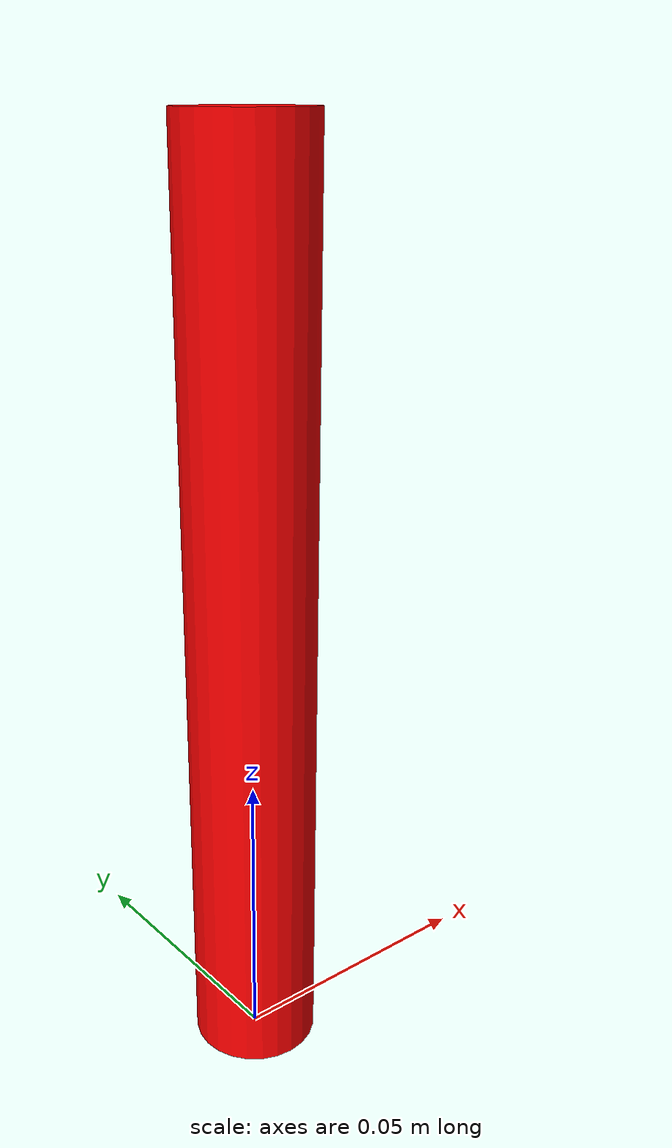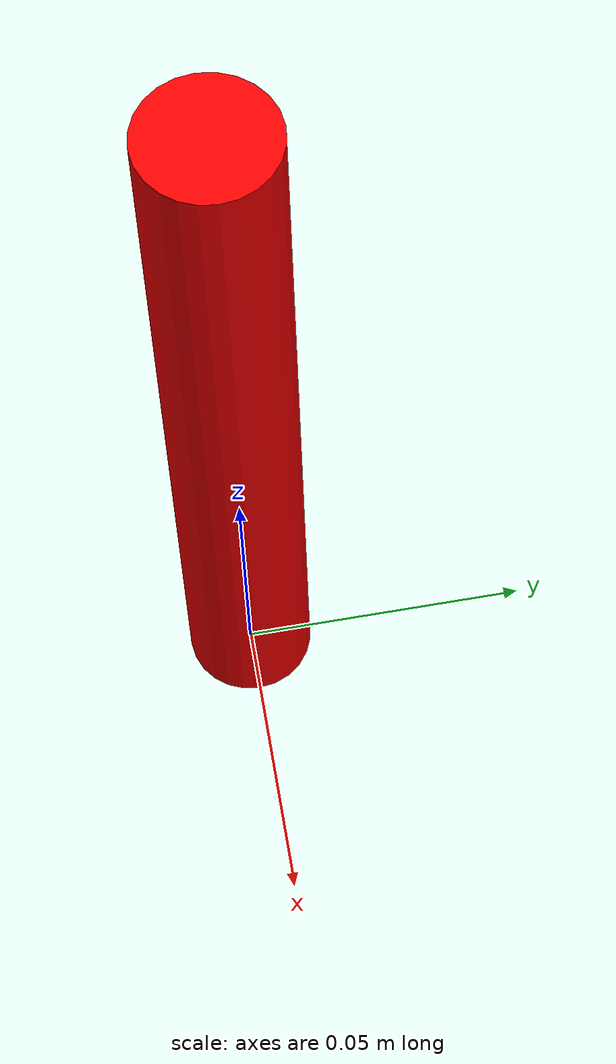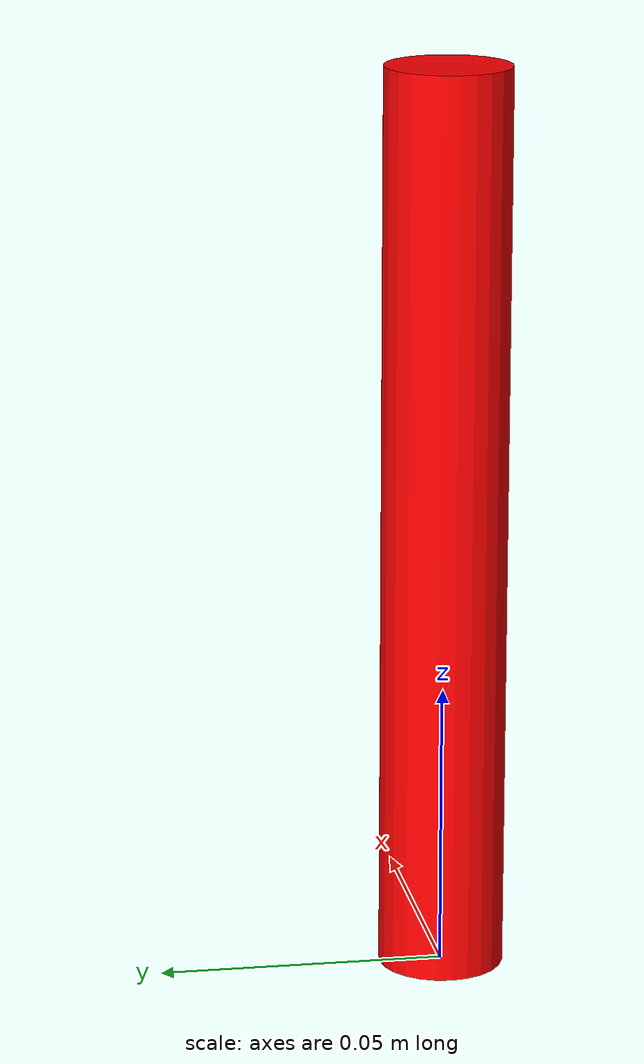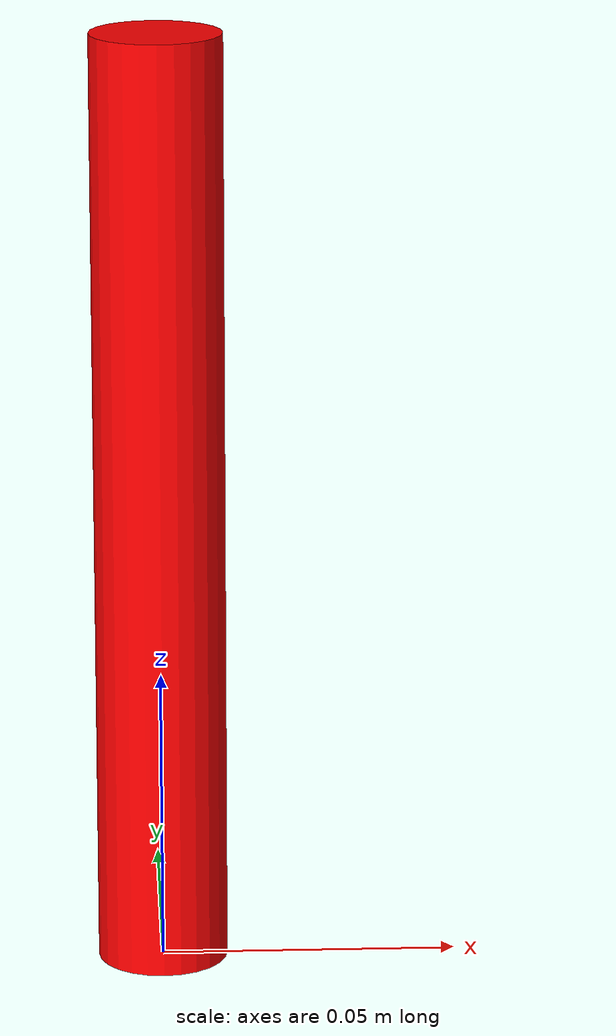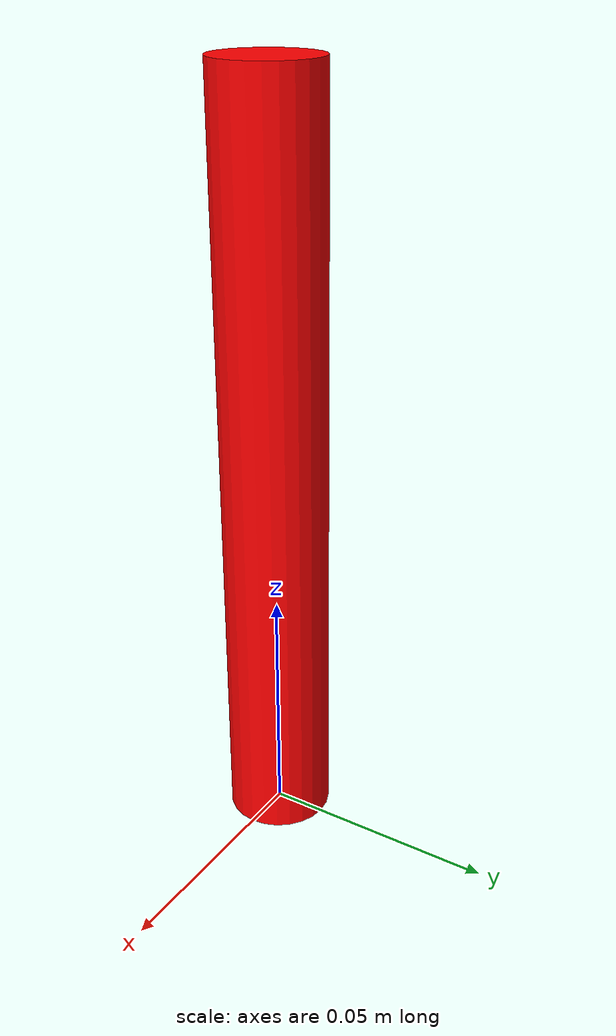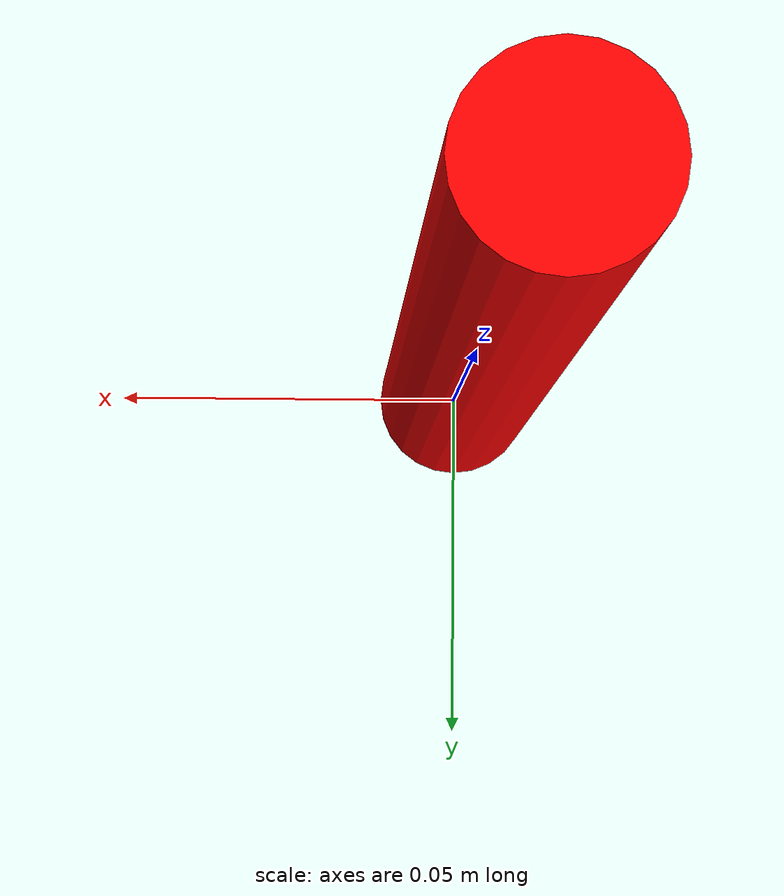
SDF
<sdf version="1.6">
  <model name="cylinder">
    <pose>0 0 0.08 0 0 0</pose>

    <link name="link">

      <!-- Inertia and Mass -->
      <inertial>
        <mass>0.05</mass>
        <inertia>
          <ixx>1e-4</ixx>
          <iyy>1e-4</iyy>
          <izz>5e-6</izz>
        </inertia>
      </inertial>

      <!-- Visual -->
      <visual name="visual">
        <geometry>
          <cylinder>
            <radius>0.011</radius>
            <length>0.16</length>
          </cylinder>
        </geometry>
        <material>
          <ambient>1 0 0 1</ambient>
          <diffuse>1 0 0 1</diffuse>
          <specular>0.1 0.1 0.1 1</specular>
        </material>
      </visual>

      <!-- Collision -->
      <collision name="collision">
        <geometry>
          <cylinder>
            <radius>0.011</radius>
            <length>0.16</length>
          </cylinder>
        </geometry>

        <surface>

          <!-- contact model -->
          <contact>
            <ode>
              <kp>2e5</kp>
              <kd>200</kd>
              <max_vel>0.3</max_vel>
              <min_depth>0.001</min_depth>
            </ode>
          </contact>

          <!-- friction -->
          <friction>
            <ode>
              <mu>2</mu>
              <mu2>2</mu2>
            </ode>

            <torsional>
              <coefficient>0.8</coefficient>
              <use_patch_radius>true</use_patch_radius>
              <patch_radius>0.02</patch_radius>
            </torsional>
          </friction>

        </surface>
      </collision>

    </link>

    <plugin
    filename="gz-sim-pose-publisher-system"
    name="gz::sim::systems::PosePublisher">
    <use_pose_vector_msg>true</use_pose_vector_msg>
    <publish_nested_model_pose>true</publish_nested_model_pose>
    </plugin>

  </model>
</sdf>
